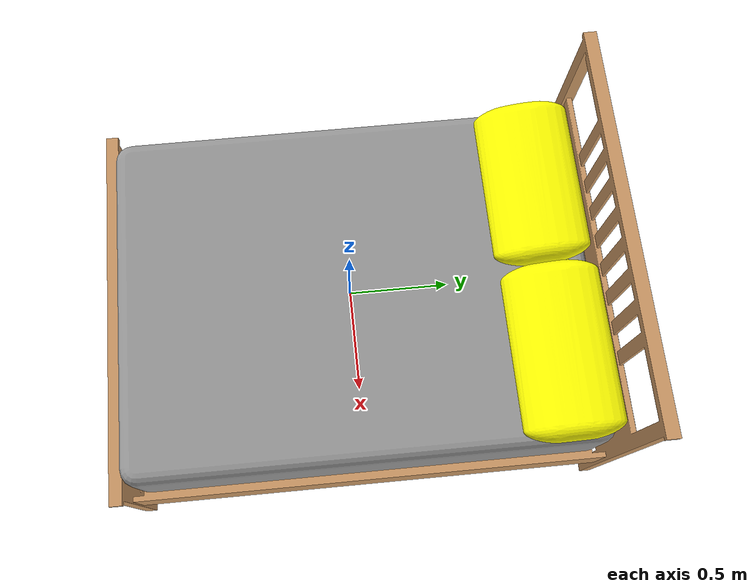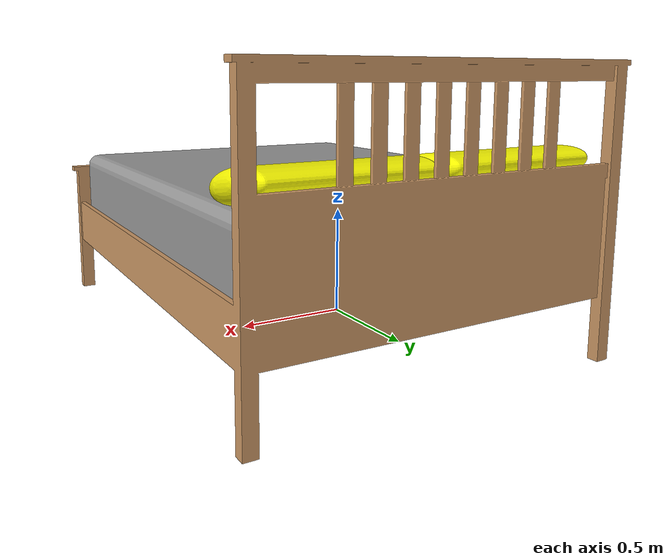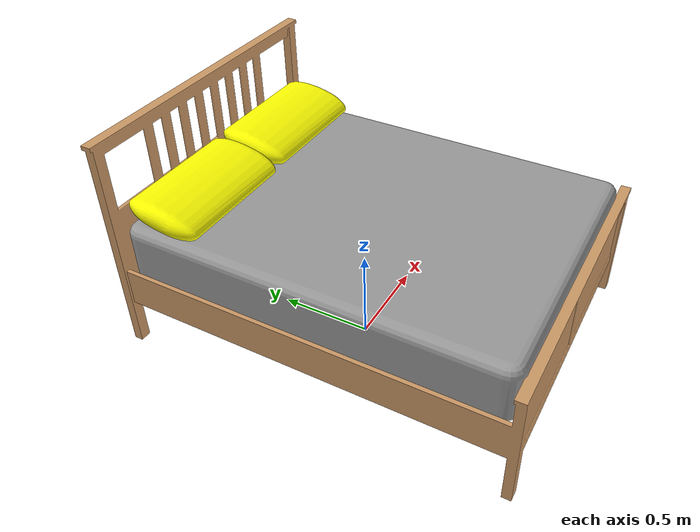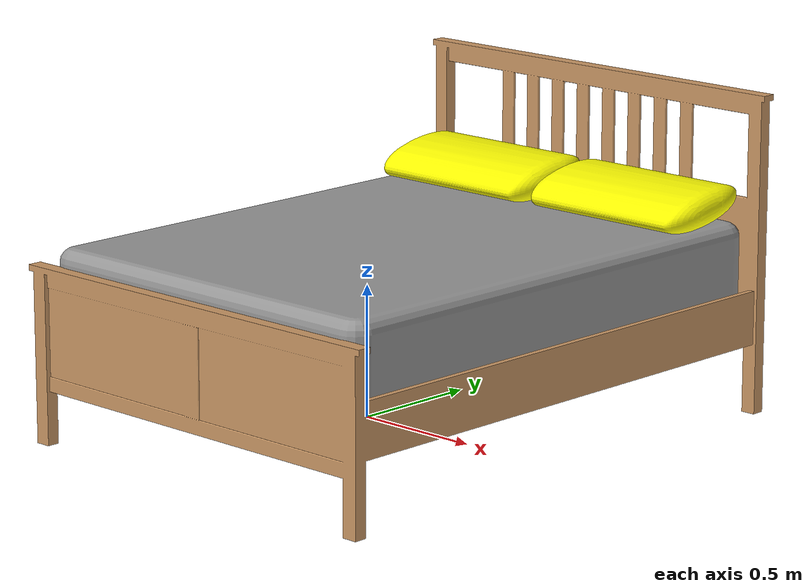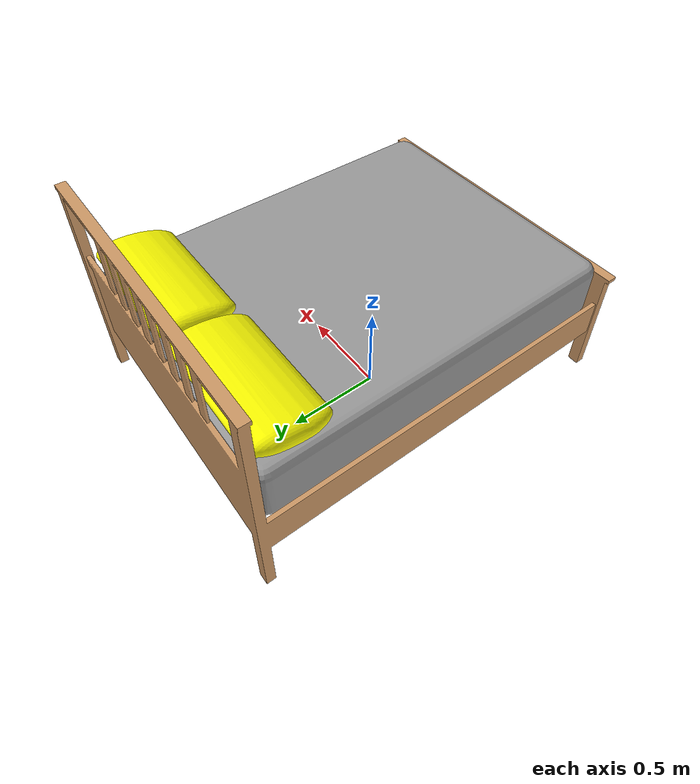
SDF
<?xml version='1.0'?>
<sdf version='1.6'>
  <model name='rai_bed'>
    <link name='link_0'>
      <pose frame=''>0.187675 0.002719 0 1.57 -0 0</pose>
      <inertial>
        <inertia>
          <ixx>1</ixx>
          <ixy>0</ixy>
          <ixz>0</ixz>
          <iyy>1</iyy>
          <iyz>0</iyz>
          <izz>1</izz>
        </inertia>
        <mass>1</mass>
        <pose frame=''>0 0 0 0 -0 0</pose>
      </inertial>
      <self_collide>0</self_collide>
      <kinematic>0</kinematic>
      <gravity>0</gravity>
      <visual name='visual'>
        <pose frame=''>0 0 0 0 -0 0</pose>
        <geometry>
          <mesh>
	    <uri>model://rai_bed/meshes/rai_bed_frame.STL</uri>
            <scale>1 1 1</scale>
          </mesh>
        </geometry>
        <material>
          <lighting>1</lighting>
          <script>
            <uri>file://media/materials/scripts/gazebo.material</uri>
            <name>Gazebo/Grey</name>
          </script>
          <ambient>0.8 0.6 0.4 1</ambient>
          <diffuse>0.8 0.6 0.4 1</diffuse>
          <specular>0.01 0.01 0.01 1</specular>
          <emissive>0 0 0 1</emissive>
          <shader type='vertex'>
            <normal_map>__default__</normal_map>
          </shader>
        </material>
        <cast_shadows>1</cast_shadows>
        <transparency>0</transparency>
      </visual>
      <collision name='collision'>
        <laser_retro>0</laser_retro>
        <max_contacts>10</max_contacts>
        <pose frame=''>0 0.21 0 0 -0 0</pose>
        <geometry>
          <box>
            <size>1.66019 0.417262 2.13243</size>
          </box>
        </geometry>
        <surface>
          <friction>
            <ode>
              <mu>1</mu>
              <mu2>1</mu2>
              <fdir1>0 0 0</fdir1>
              <slip1>0</slip1>
              <slip2>0</slip2>
            </ode>
            <torsional>
              <coefficient>1</coefficient>
              <patch_radius>0</patch_radius>
              <surface_radius>0</surface_radius>
              <use_patch_radius>1</use_patch_radius>
              <ode>
                <slip>0</slip>
              </ode>
            </torsional>
          </friction>
          <bounce>
            <restitution_coefficient>0</restitution_coefficient>
            <threshold>1e+06</threshold>
          </bounce>
          <contact>
            <collide_without_contact>0</collide_without_contact>
            <collide_without_contact_bitmask>1</collide_without_contact_bitmask>
            <collide_bitmask>1</collide_bitmask>
            <ode>
              <soft_cfm>0</soft_cfm>
              <soft_erp>0.2</soft_erp>
              <kp>1e+13</kp>
              <kd>1</kd>
              <max_vel>0.01</max_vel>
              <min_depth>0</min_depth>
            </ode>
            <bullet>
              <split_impulse>1</split_impulse>
              <split_impulse_penetration_threshold>-0.01</split_impulse_penetration_threshold>
              <soft_cfm>0</soft_cfm>
              <soft_erp>0.2</soft_erp>
              <kp>1e+13</kp>
              <kd>1</kd>
            </bullet>
          </contact>
        </surface>
      </collision>
    </link>
    <link name='link_1'>
      <pose frame=''>0.187675 0.002719 0 1.57 -0 0</pose>
      <inertial>
        <inertia>
          <ixx>1</ixx>
          <ixy>0</ixy>
          <ixz>0</ixz>
          <iyy>1</iyy>
          <iyz>0</iyz>
          <izz>1</izz>
        </inertia>
        <mass>1</mass>
        <pose frame=''>0 0 0 0 -0 0</pose>
      </inertial>
      <self_collide>0</self_collide>
      <kinematic>0</kinematic>
      <gravity>0</gravity>
      <visual name='visual'>
        <pose frame=''>0 0 0 0 -0 0</pose>
        <geometry>
          <mesh>
 	    <uri>model://rai_bed/meshes/rai_mattress.STL</uri>
            <scale>1 1 1</scale>
          </mesh>
        </geometry>
        <material>
          <lighting>1</lighting>
          <script>
            <uri>file://media/materials/scripts/gazebo.material</uri>
            <name>Gazebo/Grey</name>
          </script>
          <ambient>0.95 0.95 0.95 1</ambient>
          <diffuse>0.95 0.95 0.95 1</diffuse>
          <specular>0.01 0.01 0.01 1</specular>
          <emissive>0 0 0 1</emissive>
          <shader type='vertex'>
            <normal_map>__default__</normal_map>
          </shader>
        </material>
        <cast_shadows>1</cast_shadows>
        <transparency>0</transparency>
      </visual>
      <collision name='collision'>
        <laser_retro>0</laser_retro>
        <max_contacts>10</max_contacts>
        <pose frame=''>0 0 0 0 -0 0</pose>
        <geometry>
          <mesh>
	    <uri>model://rai_bed/meshes/rai_mattress.STL</uri>
          </mesh>
        </geometry>
        <surface>
          <friction>
            <ode>
              <mu>1</mu>
              <mu2>1</mu2>
              <fdir1>0 0 0</fdir1>
              <slip1>0</slip1>
              <slip2>0</slip2>
            </ode>
            <torsional>
              <coefficient>1</coefficient>
              <patch_radius>0</patch_radius>
              <surface_radius>0</surface_radius>
              <use_patch_radius>1</use_patch_radius>
              <ode>
                <slip>0</slip>
              </ode>
            </torsional>
          </friction>
          <bounce>
            <restitution_coefficient>0</restitution_coefficient>
            <threshold>1e+06</threshold>
          </bounce>
          <contact>
            <collide_without_contact>0</collide_without_contact>
            <collide_without_contact_bitmask>1</collide_without_contact_bitmask>
            <collide_bitmask>1</collide_bitmask>
            <ode>
              <soft_cfm>0</soft_cfm>
              <soft_erp>0.2</soft_erp>
              <kp>1e+13</kp>
              <kd>1</kd>
              <max_vel>0.01</max_vel>
              <min_depth>0</min_depth>
            </ode>
            <bullet>
              <split_impulse>1</split_impulse>
              <split_impulse_penetration_threshold>-0.01</split_impulse_penetration_threshold>
              <soft_cfm>0</soft_cfm>
              <soft_erp>0.2</soft_erp>
              <kp>1e+13</kp>
              <kd>1</kd>
            </bullet>
          </contact>
        </surface>
      </collision>
    </link>
    <link name='link_2'>
      <pose frame=''>0.187675 0.002719 0 1.57 -0 0</pose>
      <inertial>
        <inertia>
          <ixx>1</ixx>
          <ixy>0</ixy>
          <ixz>0</ixz>
          <iyy>1</iyy>
          <iyz>0</iyz>
          <izz>1</izz>
        </inertia>
        <mass>1</mass>
        <pose frame=''>0 0 0 0 -0 0</pose>
      </inertial>
      <self_collide>0</self_collide>
      <kinematic>0</kinematic>
      <gravity>0</gravity>
      <visual name='visual'>
        <pose frame=''>0 0 0 0 -0 0</pose>
        <geometry>
          <mesh>
	    <uri>model://rai_bed/meshes/rai_pillow.STL</uri>
            <scale>1 1 1</scale>
          </mesh>
        </geometry>
        <material>
          <lighting>1</lighting>
          <script>
            <uri>file://media/materials/scripts/gazebo.material</uri>
            <name>Gazebo/Grey</name>
          </script>
          <ambient>1 1 0 1</ambient>
          <diffuse>0.7 0.7 0.7 1</diffuse>
          <specular>0.01 0.01 0.01 1</specular>
          <emissive>0 0 0 1</emissive>
          <shader type='vertex'>
            <normal_map>__default__</normal_map>
          </shader>
        </material>
        <cast_shadows>1</cast_shadows>
        <transparency>0</transparency>
      </visual>
      <collision name='collision'>
        <laser_retro>0</laser_retro>
        <max_contacts>10</max_contacts>
        <pose frame=''>0.38 0.8 -0.82 0 -0 0</pose>
        <geometry>
          <box>
            <size>0.72 0.17 0.41</size>
          </box>
        </geometry>
        <surface>
          <friction>
            <ode>
              <mu>1</mu>
              <mu2>1</mu2>
              <fdir1>0 0 0</fdir1>
              <slip1>0</slip1>
              <slip2>0</slip2>
            </ode>
            <torsional>
              <coefficient>1</coefficient>
              <patch_radius>0</patch_radius>
              <surface_radius>0</surface_radius>
              <use_patch_radius>1</use_patch_radius>
              <ode>
                <slip>0</slip>
              </ode>
            </torsional>
          </friction>
          <bounce>
            <restitution_coefficient>0</restitution_coefficient>
            <threshold>1e+06</threshold>
          </bounce>
          <contact>
            <collide_without_contact>0</collide_without_contact>
            <collide_without_contact_bitmask>1</collide_without_contact_bitmask>
            <collide_bitmask>1</collide_bitmask>
            <ode>
              <soft_cfm>0</soft_cfm>
              <soft_erp>0.2</soft_erp>
              <kp>1e+13</kp>
              <kd>1</kd>
              <max_vel>0.01</max_vel>
              <min_depth>0</min_depth>
            </ode>
            <bullet>
              <split_impulse>1</split_impulse>
              <split_impulse_penetration_threshold>-0.01</split_impulse_penetration_threshold>
              <soft_cfm>0</soft_cfm>
              <soft_erp>0.2</soft_erp>
              <kp>1e+13</kp>
              <kd>1</kd>
            </bullet>
          </contact>
        </surface>
      </collision>
    </link>
    <link name='link_3'>
      <pose frame=''>-0.563026 -0.008157 0 1.57 -0 0</pose>
      <inertial>
        <inertia>
          <ixx>1</ixx>
          <ixy>0</ixy>
          <ixz>0</ixz>
          <iyy>1</iyy>
          <iyz>0</iyz>
          <izz>1</izz>
        </inertia>
        <mass>1</mass>
        <pose frame=''>0 0 0 0 -0 0</pose>
      </inertial>
      <self_collide>0</self_collide>
      <kinematic>0</kinematic>
      <gravity>0</gravity>
      <visual name='visual'>
        <pose frame=''>0 0 0 0 -0 0</pose>
        <geometry>
          <mesh>
            <uri>model://rai_bed/meshes/rai_pillow.STL</uri>
            <scale>1 1 1</scale>
          </mesh>
        </geometry>
        <material>
          <lighting>1</lighting>
          <script>
            <uri>file://media/materials/scripts/gazebo.material</uri>
            <name>Gazebo/Grey</name>
          </script>
          <ambient>1 1 0 1</ambient>
          <diffuse>0.7 0.7 0.7 1</diffuse>
          <specular>0.01 0.01 0.01 1</specular>
          <emissive>0 0 0 1</emissive>
          <shader type='vertex'>
            <normal_map>__default__</normal_map>
          </shader>
        </material>
        <cast_shadows>1</cast_shadows>
        <transparency>0</transparency>
      </visual>
      <collision name='collision'>
        <laser_retro>0</laser_retro>
        <max_contacts>10</max_contacts>
        <pose frame=''>0.38 0.8 -0.82 0 -0 0</pose>
        <geometry>
          <box>
            <size>0.72 0.17 0.41</size>
          </box>
        </geometry>
        <surface>
          <friction>
            <ode>
              <mu>1</mu>
              <mu2>1</mu2>
              <fdir1>0 0 0</fdir1>
              <slip1>0</slip1>
              <slip2>0</slip2>
            </ode>
            <torsional>
              <coefficient>1</coefficient>
              <patch_radius>0</patch_radius>
              <surface_radius>0</surface_radius>
              <use_patch_radius>1</use_patch_radius>
              <ode>
                <slip>0</slip>
              </ode>
            </torsional>
          </friction>
          <bounce>
            <restitution_coefficient>0</restitution_coefficient>
            <threshold>1e+06</threshold>
          </bounce>
          <contact>
            <collide_without_contact>0</collide_without_contact>
            <collide_without_contact_bitmask>1</collide_without_contact_bitmask>
            <collide_bitmask>1</collide_bitmask>
            <ode>
              <soft_cfm>0</soft_cfm>
              <soft_erp>0.2</soft_erp>
              <kp>1e+13</kp>
              <kd>1</kd>
              <max_vel>0.01</max_vel>
              <min_depth>0</min_depth>
            </ode>
            <bullet>
              <split_impulse>1</split_impulse>
              <split_impulse_penetration_threshold>-0.01</split_impulse_penetration_threshold>
              <soft_cfm>0</soft_cfm>
              <soft_erp>0.2</soft_erp>
              <kp>1e+13</kp>
              <kd>1</kd>
            </bullet>
          </contact>
        </surface>
      </collision>
    </link>
    <static>1</static>
    <allow_auto_disable>1</allow_auto_disable>
  </model>
</sdf>
